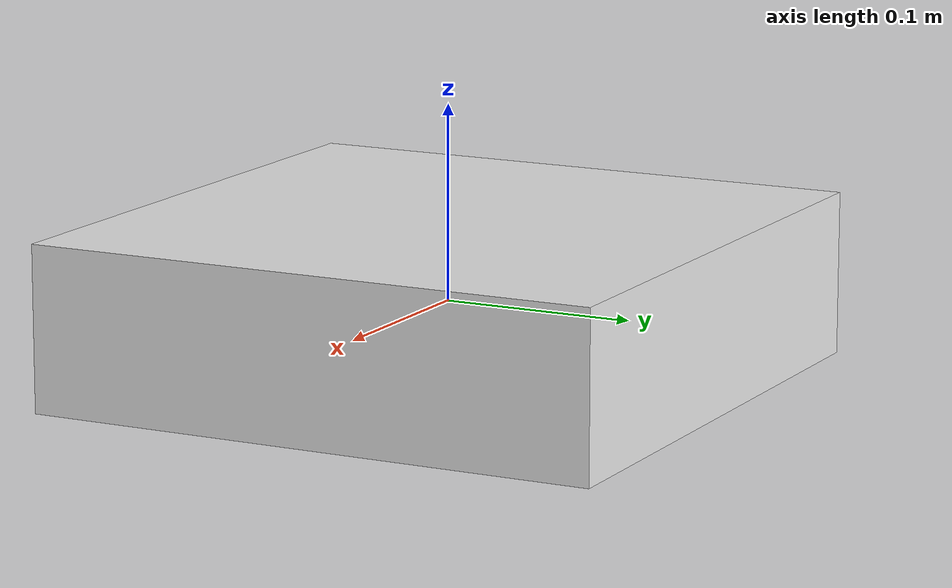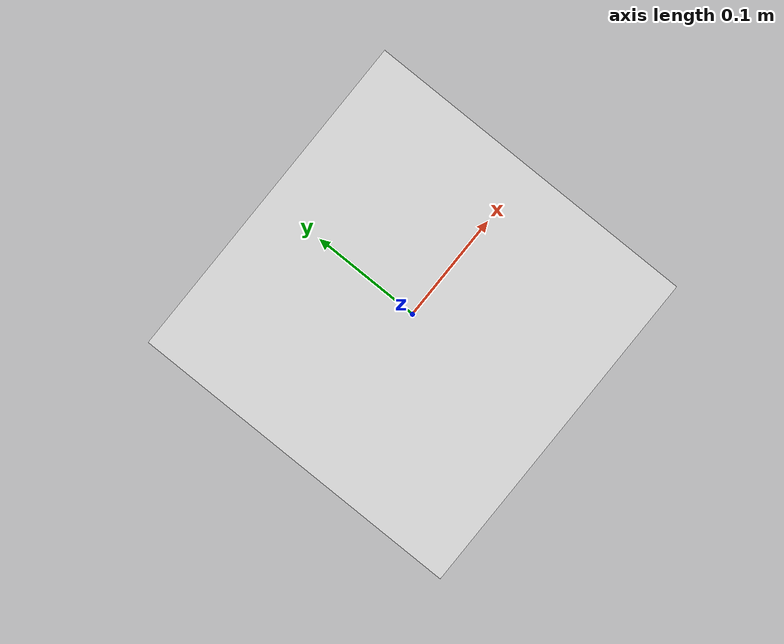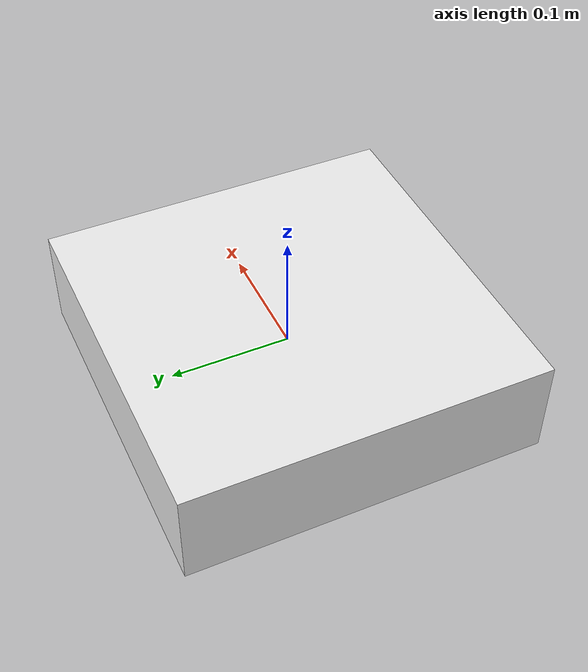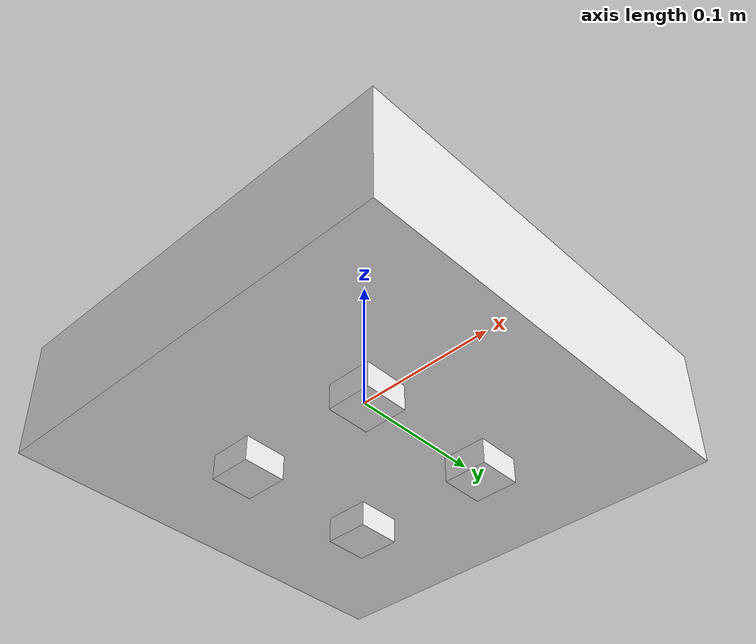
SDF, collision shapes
<sdf version='1.6'>
  <model name='clever'>
    <link name='base_link'>
      <pose frame=''>0 0 0 0 -0 0</pose>
      <inertial>
        <pose frame=''>0 0 0 0 -0 0</pose>
        <mass>0.483</mass>
        <inertia>
          <ixx>0.002112</ixx>
          <ixy>0.00002</ixy>
          <ixz>0</ixz>
          <iyy>0.003291</iyy>
          <iyz>0.000009</iyz>
          <izz>0.002019</izz>
        </inertia>
      </inertial>
      <collision name='base_link_inertia_collision'>
        <pose frame=''>0 0 0 0 -0 0</pose>
        <geometry>
          <box>
            <size>0.3 0.3 0.085</size>
          </box>
        </geometry>
        <surface>
          <contact>
            <ode>
              <min_depth>0.001</min_depth>
              <max_vel>0</max_vel>
            </ode>
          </contact>
          <friction>
            <ode/>
          </friction>
        </surface>
      </collision>
      <collision name='front_left_leg_collision'>
        <pose frame=''>0.05 0.05 -0.045 0 -0 0</pose>
        <geometry>
          <box>
            <size>0.03 0.03 0.03</size>
          </box>
        </geometry>
        <surface>
          <contact>
            <ode>
              <min_depth>0.001</min_depth>
              <max_vel>0</max_vel>
            </ode>
          </contact>
          <friction>
            <ode/>
          </friction>
        </surface>
      </collision>
      <collision name='back_left_leg_collision'>
        <pose frame=''>-0.05 0.05 -0.045 0 -0 0</pose>
        <geometry>
          <box>
            <size>0.03 0.03 0.03</size>
          </box>
        </geometry>
        <surface>
          <contact>
            <ode>
              <min_depth>0.001</min_depth>
              <max_vel>0</max_vel>
            </ode>
          </contact>
          <friction>
            <ode/>
          </friction>
        </surface>
      </collision>
      <collision name='front_right_leg_collision'>
        <pose frame=''>0.05 -0.05 -0.045 0 -0 0</pose>
        <geometry>
          <box>
            <size>0.03 0.03 0.03</size>
          </box>
        </geometry>
        <surface>
          <contact>
            <ode>
              <min_depth>0.001</min_depth>
              <max_vel>0</max_vel>
            </ode>
          </contact>
          <friction>
            <ode/>
          </friction>
        </surface>
      </collision>
      <collision name='back_right_leg_collision'>
        <pose frame=''>-0.05 -0.05 -0.045 0 -0 0</pose>
        <geometry>
          <box>
            <size>0.03 0.03 0.03</size>
          </box>
        </geometry>
        <surface>
          <contact>
            <ode>
              <min_depth>0.001</min_depth>
              <max_vel>0</max_vel>
            </ode>
          </contact>
          <friction>
            <ode/>
          </friction>
        </surface>
      </collision>
      <visual name='base_link_inertia_visual'>
        <pose frame=''>0 0 0 0 -0 0</pose>
        <geometry>
          <mesh>
            <scale>0.001 0.001 0.001</scale>
            <uri>model://clever/meshes/clever_propless.dae</uri>
          </mesh>
        </geometry>
        <material>
          <script>
            <name>Gazebo/White</name>
            <uri>file://media/materials/scripts/gazebo.material</uri>
          </script>
        </material>
      </visual>
      <gravity>1</gravity>
      <velocity_decay/>
    </link>
    <link name='/imu_link'>
      <pose frame=''>0 0 0 0 -0 0</pose>
      <inertial>
        <pose frame=''>0 0 0 0 -0 0</pose>
        <mass>0.015</mass>
        <inertia>
          <ixx>1e-05</ixx>
          <ixy>0</ixy>
          <ixz>0</ixz>
          <iyy>1e-05</iyy>
          <iyz>0</iyz>
          <izz>1e-05</izz>
        </inertia>
      </inertial>
    </link>
    <joint name='/imu_joint' type='fixed'>
      <child>/imu_link</child>
      <parent>base_link</parent>
      <axis>
        <xyz>1 0 0</xyz>
        <limit>
          <lower>0</lower>
          <upper>0</upper>
          <effort>0</effort>
          <velocity>0</velocity>
        </limit>
        <dynamics>
          <spring_reference>0</spring_reference>
          <spring_stiffness>0</spring_stiffness>
        </dynamics>
        <use_parent_model_frame>1</use_parent_model_frame>
      </axis>
    </joint>
    <link name='rotor_0'>
      <pose frame=''>0.072 -0.072 0.002 0 -0 0</pose>
      <inertial>
        <pose frame=''>0 0 0 0 -0 0</pose>
        <mass>0.005</mass>
        <inertia>
          <ixx>9.75e-07</ixx>
          <ixy>0</ixy>
          <ixz>0</ixz>
          <iyy>0.000273104</iyy>
          <iyz>0</iyz>
          <izz>0.000274004</izz>
        </inertia>
      </inertial>
      <collision name='rotor_0_collision'>
        <pose frame=''>0 0 0.02 0 -0 0</pose>
        <geometry>
          <cylinder>
            <length>0.005</length>
            <radius>0.062</radius>
          </cylinder>
        </geometry>
        <surface>
          <contact>
            <ode/>
          </contact>
          <friction>
            <ode/>
          </friction>
        </surface>
      </collision>
      <visual name='rotor_0_visual'>
        <pose frame=''>0 0 0 0 -0 0</pose>
        <geometry>
          <mesh>
            <scale>0.001 0.001 0.001</scale>
            <uri>model://clever/meshes/clever_ccw_prop.dae</uri>
          </mesh>
        </geometry>
        <material>
          <script>
            <name>Gazebo/Blue</name>
            <uri>file://media/materials/scripts/gazebo.material</uri>
          </script>
        </material>
      </visual>
      <gravity>1</gravity>
      <velocity_decay/>
    </link>
    <joint name='rotor_0_joint' type='revolute'>
      <child>rotor_0</child>
      <parent>base_link</parent>
      <axis>
        <xyz>0 0 1</xyz>
        <limit>
          <lower>-1e+16</lower>
          <upper>1e+16</upper>
        </limit>
        <dynamics>
          <spring_reference>0</spring_reference>
          <spring_stiffness>0</spring_stiffness>
        </dynamics>
        <use_parent_model_frame>1</use_parent_model_frame>
      </axis>
    </joint>
    <link name='rotor_1'>
      <pose frame=''>-0.072 0.072 0.002 0 -0 0</pose>
      <inertial>
        <pose frame=''>0 0 0 0 -0 0</pose>
        <mass>0.005</mass>
        <inertia>
          <ixx>9.75e-07</ixx>
          <ixy>0</ixy>
          <ixz>0</ixz>
          <iyy>0.000273104</iyy>
          <iyz>0</iyz>
          <izz>0.000274004</izz>
        </inertia>
      </inertial>
      <collision name='rotor_1_collision'>
        <pose frame=''>0 0 0.02 0 -0 0</pose>
        <geometry>
          <cylinder>
            <length>0.005</length>
            <radius>0.062</radius>
          </cylinder>
        </geometry>
        <surface>
          <contact>
            <ode/>
          </contact>
          <friction>
            <ode/>
          </friction>
        </surface>
      </collision>
      <visual name='rotor_1_visual'>
        <pose frame=''>0 0 0 0 -0 0</pose>
        <geometry>
          <mesh>
            <scale>0.001 0.001 0.001</scale>
            <uri>model://clever/meshes/clever_ccw_prop.dae</uri>
          </mesh>
        </geometry>
        <material>
          <script>
            <name>Gazebo/Blue</name>
            <uri>file://media/materials/scripts/gazebo.material</uri>
          </script>
        </material>
      </visual>
      <gravity>1</gravity>
      <velocity_decay/>
    </link>
    <joint name='rotor_1_joint' type='revolute'>
      <child>rotor_1</child>
      <parent>base_link</parent>
      <axis>
        <xyz>0 0 1</xyz>
        <limit>
          <lower>-1e+16</lower>
          <upper>1e+16</upper>
        </limit>
        <dynamics>
          <spring_reference>0</spring_reference>
          <spring_stiffness>0</spring_stiffness>
        </dynamics>
        <use_parent_model_frame>1</use_parent_model_frame>
      </axis>
    </joint>
    <link name='rotor_2'>
      <pose frame=''>0.072 0.072 0.002 0 -0 0</pose>
      <inertial>
        <pose frame=''>0 0 0 0 -0 0</pose>
        <mass>0.005</mass>
        <inertia>
          <ixx>9.75e-07</ixx>
          <ixy>0</ixy>
          <ixz>0</ixz>
          <iyy>0.000273104</iyy>
          <iyz>0</iyz>
          <izz>0.000274004</izz>
        </inertia>
      </inertial>
      <collision name='rotor_2_collision'>
        <pose frame=''>0 0 0.02 0 -0 0</pose>
        <geometry>
          <cylinder>
            <length>0.005</length>
            <radius>0.062</radius>
          </cylinder>
        </geometry>
        <surface>
          <contact>
            <ode/>
          </contact>
          <friction>
            <ode/>
          </friction>
        </surface>
      </collision>
      <visual name='rotor_2_visual'>
        <pose frame=''>0 0 0 0 -0 0</pose>
        <geometry>
          <mesh>
            <scale>0.001 0.001 0.001</scale>
            <uri>model://clever/meshes/clever_cw_prop.dae</uri>
          </mesh>
        </geometry>
        <material>
          <script>
            <name>Gazebo/DarkGrey</name>
            <uri>file://media/materials/scripts/gazebo.material</uri>
          </script>
        </material>
      </visual>
      <gravity>1</gravity>
      <velocity_decay/>
    </link>
    <joint name='rotor_2_joint' type='revolute'>
      <child>rotor_2</child>
      <parent>base_link</parent>
      <axis>
        <xyz>0 0 1</xyz>
        <limit>
          <lower>-1e+16</lower>
          <upper>1e+16</upper>
        </limit>
        <dynamics>
          <spring_reference>0</spring_reference>
          <spring_stiffness>0</spring_stiffness>
        </dynamics>
        <use_parent_model_frame>1</use_parent_model_frame>
      </axis>
    </joint>
    <link name='rotor_3'>
      <pose frame=''>-0.072 -0.072 0.002 0 -0 0</pose>
      <inertial>
        <pose frame=''>0 0 0 0 -0 0</pose>
        <mass>0.005</mass>
        <inertia>
          <ixx>9.75e-07</ixx>
          <ixy>0</ixy>
          <ixz>0</ixz>
          <iyy>0.000273104</iyy>
          <iyz>0</iyz>
          <izz>0.000274004</izz>
        </inertia>
      </inertial>
      <collision name='rotor_3_collision'>
        <pose frame=''>0 0 0.02 0 -0 0</pose>
        <geometry>
          <cylinder>
            <length>0.005</length>
            <radius>0.062</radius>
          </cylinder>
        </geometry>
        <surface>
          <contact>
            <ode/>
          </contact>
          <friction>
            <ode/>
          </friction>
        </surface>
      </collision>
      <visual name='rotor_3_visual'>
        <pose frame=''>0 0 0 0 -0 0</pose>
        <geometry>
          <mesh>
            <scale>0.001 0.001 0.001</scale>
            <uri>model://clever/meshes/clever_cw_prop.dae</uri>
          </mesh>
        </geometry>
        <material>
          <script>
            <name>Gazebo/DarkGrey</name>
            <uri>file://media/materials/scripts/gazebo.material</uri>
          </script>
        </material>
      </visual>
      <gravity>1</gravity>
      <velocity_decay/>
    </link>
    <joint name='rotor_3_joint' type='revolute'>
      <child>rotor_3</child>
      <parent>base_link</parent>
      <axis>
        <xyz>0 0 1</xyz>
        <limit>
          <lower>-1e+16</lower>
          <upper>1e+16</upper>
        </limit>
        <dynamics>
          <spring_reference>0</spring_reference>
          <spring_stiffness>0</spring_stiffness>
        </dynamics>
        <use_parent_model_frame>1</use_parent_model_frame>
      </axis>
    </joint>
    <plugin name='rosbag' filename='libgazebo_multirotor_base_plugin.so'>
      <robotNamespace>clever</robotNamespace>
      <linkName>base_link</linkName>
      <rotorVelocitySlowdownSim>10</rotorVelocitySlowdownSim>
    </plugin>
    <plugin name='front_right_motor_model' filename='libgazebo_motor_model.so'>
      <robotNamespace/>
      <jointName>rotor_0_joint</jointName>
      <linkName>rotor_0</linkName>
      <turningDirection>ccw</turningDirection>
      <timeConstantUp>0.0125</timeConstantUp>
      <timeConstantDown>0.025</timeConstantDown>
      <maxRotVelocity>1100</maxRotVelocity>
      <motorConstant>8.54858e-06</motorConstant>
      <momentConstant>0.06</momentConstant>
      <commandSubTopic>/gazebo/command/motor_speed</commandSubTopic>
      <motorNumber>0</motorNumber>
      <rotorDragCoefficient>0.000806428</rotorDragCoefficient>
      <rollingMomentCoefficient>1e-06</rollingMomentCoefficient>
      <motorSpeedPubTopic>/motor_speed/0</motorSpeedPubTopic>
      <rotorVelocitySlowdownSim>10</rotorVelocitySlowdownSim>
    </plugin>
    <plugin name='back_left_motor_model' filename='libgazebo_motor_model.so'>
      <robotNamespace/>
      <jointName>rotor_1_joint</jointName>
      <linkName>rotor_1</linkName>
      <turningDirection>ccw</turningDirection>
      <timeConstantUp>0.0125</timeConstantUp>
      <timeConstantDown>0.025</timeConstantDown>
      <maxRotVelocity>1100</maxRotVelocity>
      <motorConstant>8.54858e-06</motorConstant>
      <momentConstant>0.06</momentConstant>
      <commandSubTopic>/gazebo/command/motor_speed</commandSubTopic>
      <motorNumber>1</motorNumber>
      <rotorDragCoefficient>0.000806428</rotorDragCoefficient>
      <rollingMomentCoefficient>1e-06</rollingMomentCoefficient>
      <motorSpeedPubTopic>/motor_speed/1</motorSpeedPubTopic>
      <rotorVelocitySlowdownSim>10</rotorVelocitySlowdownSim>
    </plugin>
    <plugin name='front_left_motor_model' filename='libgazebo_motor_model.so'>
      <robotNamespace/>
      <jointName>rotor_2_joint</jointName>
      <linkName>rotor_2</linkName>
      <turningDirection>cw</turningDirection>
      <timeConstantUp>0.0125</timeConstantUp>
      <timeConstantDown>0.025</timeConstantDown>
      <maxRotVelocity>1100</maxRotVelocity>
      <motorConstant>8.54858e-06</motorConstant>
      <momentConstant>0.06</momentConstant>
      <commandSubTopic>/gazebo/command/motor_speed</commandSubTopic>
      <motorNumber>2</motorNumber>
      <rotorDragCoefficient>0.000806428</rotorDragCoefficient>
      <rollingMomentCoefficient>1e-06</rollingMomentCoefficient>
      <motorSpeedPubTopic>/motor_speed/2</motorSpeedPubTopic>
      <rotorVelocitySlowdownSim>10</rotorVelocitySlowdownSim>
    </plugin>
    <plugin name='back_right_motor_model' filename='libgazebo_motor_model.so'>
      <robotNamespace/>
      <jointName>rotor_3_joint</jointName>
      <linkName>rotor_3</linkName>
      <turningDirection>cw</turningDirection>
      <timeConstantUp>0.0125</timeConstantUp>
      <timeConstantDown>0.025</timeConstantDown>
      <maxRotVelocity>1100</maxRotVelocity>
      <motorConstant>8.54858e-06</motorConstant>
      <momentConstant>0.06</momentConstant>
      <commandSubTopic>/gazebo/command/motor_speed</commandSubTopic>
      <motorNumber>3</motorNumber>
      <rotorDragCoefficient>0.000806428</rotorDragCoefficient>
      <rollingMomentCoefficient>1e-06</rollingMomentCoefficient>
      <motorSpeedPubTopic>/motor_speed/3</motorSpeedPubTopic>
      <rotorVelocitySlowdownSim>10</rotorVelocitySlowdownSim>
    </plugin>
    <plugin name='gps_plugin' filename='libgazebo_gps_plugin.so'>
      <robotNamespace/>
      <gpsNoise>1</gpsNoise>
    </plugin>
    <plugin name='magnetometer_plugin' filename='libgazebo_magnetometer_plugin.so'>
      <robotNamespace/>
      <pubRate>20</pubRate>
      <noiseDensity>0.0004</noiseDensity>
      <randomWalk>6.4e-06</randomWalk>
      <biasCorrelationTime>600</biasCorrelationTime>
      <magTopic>/mag</magTopic>
    </plugin>
    <plugin name='barometer_plugin' filename='libgazebo_barometer_plugin.so'>
      <robotNamespace/>
      <pubRate>10</pubRate>
      <baroTopic>/baro</baroTopic>
    </plugin>
    <plugin name='mavlink_interface' filename='libgazebo_mavlink_interface.so'>
      <robotNamespace/>
      <imuSubTopic>/imu</imuSubTopic>
      <gpsSubTopic>/gps</gpsSubTopic>
      <magSubTopic>/mag</magSubTopic>
      <baroSubTopic>/baro</baroSubTopic>
      <mavlink_addr>INADDR_ANY</mavlink_addr>
      <mavlink_udp_port>14560</mavlink_udp_port>
      <mavlink_tcp_port>4560</mavlink_tcp_port>
      <serialEnabled>0</serialEnabled>
      <serialDevice>/dev/ttyACM0</serialDevice>
      <baudRate>921600</baudRate>
      <qgc_addr>INADDR_ANY</qgc_addr>
      <qgc_udp_port>14550</qgc_udp_port>
      <sdk_addr>INADDR_ANY</sdk_addr>
      <sdk_udp_port>14540</sdk_udp_port>
      <hil_mode>0</hil_mode>
      <hil_state_level>0</hil_state_level>
      <vehicle_is_tailsitter>0</vehicle_is_tailsitter>
      <send_vision_estimation>1</send_vision_estimation>
      <send_odometry>0</send_odometry>
      <enable_lockstep>1</enable_lockstep>
      <use_tcp>1</use_tcp>
      <motorSpeedCommandPubTopic>/gazebo/command/motor_speed</motorSpeedCommandPubTopic>
      <control_channels>
        <channel name='rotor1'>
          <input_index>0</input_index>
          <input_offset>0</input_offset>
          <input_scaling>1000</input_scaling>
          <zero_position_disarmed>0</zero_position_disarmed>
          <zero_position_armed>100</zero_position_armed>
          <joint_control_type>velocity</joint_control_type>
        </channel>
        <channel name='rotor2'>
          <input_index>1</input_index>
          <input_offset>0</input_offset>
          <input_scaling>1000</input_scaling>
          <zero_position_disarmed>0</zero_position_disarmed>
          <zero_position_armed>100</zero_position_armed>
          <joint_control_type>velocity</joint_control_type>
        </channel>
        <channel name='rotor3'>
          <input_index>2</input_index>
          <input_offset>0</input_offset>
          <input_scaling>1000</input_scaling>
          <zero_position_disarmed>0</zero_position_disarmed>
          <zero_position_armed>100</zero_position_armed>
          <joint_control_type>velocity</joint_control_type>
        </channel>
        <channel name='rotor4'>
          <input_index>3</input_index>
          <input_offset>0</input_offset>
          <input_scaling>1000</input_scaling>
          <zero_position_disarmed>0</zero_position_disarmed>
          <zero_position_armed>100</zero_position_armed>
          <joint_control_type>velocity</joint_control_type>
        </channel>
        <channel name='rotor5'>
          <input_index>4</input_index>
          <input_offset>1</input_offset>
          <input_scaling>324.6</input_scaling>
          <zero_position_disarmed>0</zero_position_disarmed>
          <zero_position_armed>0</zero_position_armed>
          <joint_control_type>velocity</joint_control_type>
          <joint_control_pid>
            <p>0.1</p>
            <i>0</i>
            <d>0</d>
            <iMax>0.0</iMax>
            <iMin>0.0</iMin>
            <cmdMax>2</cmdMax>
            <cmdMin>-2</cmdMin>
          </joint_control_pid>
          <joint_name>zephyr_delta_wing::propeller_joint</joint_name>
        </channel>
        <channel name='rotor6'>
          <input_index>5</input_index>
          <input_offset>0</input_offset>
          <input_scaling>0.524</input_scaling>
          <zero_position_disarmed>0</zero_position_disarmed>
          <zero_position_armed>0</zero_position_armed>
          <joint_control_type>position</joint_control_type>
          <joint_name>zephyr_delta_wing::flap_left_joint</joint_name>
          <joint_control_pid>
            <p>10.0</p>
            <i>0</i>
            <d>0</d>
            <iMax>0</iMax>
            <iMin>0</iMin>
            <cmdMax>20</cmdMax>
            <cmdMin>-20</cmdMin>
          </joint_control_pid>
        </channel>
        <channel name='rotor7'>
          <input_index>6</input_index>
          <input_offset>0</input_offset>
          <input_scaling>0.524</input_scaling>
          <zero_position_disarmed>0</zero_position_disarmed>
          <zero_position_armed>0</zero_position_armed>
          <joint_control_type>position</joint_control_type>
          <joint_name>zephyr_delta_wing::flap_right_joint</joint_name>
          <joint_control_pid>
            <p>10.0</p>
            <i>0</i>
            <d>0</d>
            <iMax>0</iMax>
            <iMin>0</iMin>
            <cmdMax>20</cmdMax>
            <cmdMin>-20</cmdMin>
          </joint_control_pid>
        </channel>
        <channel name='rotor8'>
          <input_index>7</input_index>
          <input_offset>0</input_offset>
          <input_scaling>0.524</input_scaling>
          <zero_position_disarmed>0</zero_position_disarmed>
          <zero_position_armed>0</zero_position_armed>
          <joint_control_type>position</joint_control_type>
        </channel>
      </control_channels>
    </plugin>
    <static>0</static>
    <plugin name='rotors_gazebo_imu_plugin' filename='libgazebo_imu_plugin.so'>
      <robotNamespace/>
      <linkName>/imu_link</linkName>
      <imuTopic>/imu</imuTopic>
      <gyroscopeNoiseDensity>0.0003394</gyroscopeNoiseDensity>
      <gyroscopeRandomWalk>3.8785e-05</gyroscopeRandomWalk>
      <gyroscopeBiasCorrelationTime>1000.0</gyroscopeBiasCorrelationTime>
      <gyroscopeTurnOnBiasSigma>0.0087</gyroscopeTurnOnBiasSigma>
      <accelerometerNoiseDensity>0.004</accelerometerNoiseDensity>
      <accelerometerRandomWalk>0.006</accelerometerRandomWalk>
      <accelerometerBiasCorrelationTime>300.0</accelerometerBiasCorrelationTime>
      <accelerometerTurnOnBiasSigma>0.196</accelerometerTurnOnBiasSigma>
    </plugin>
  </model>
</sdf>
